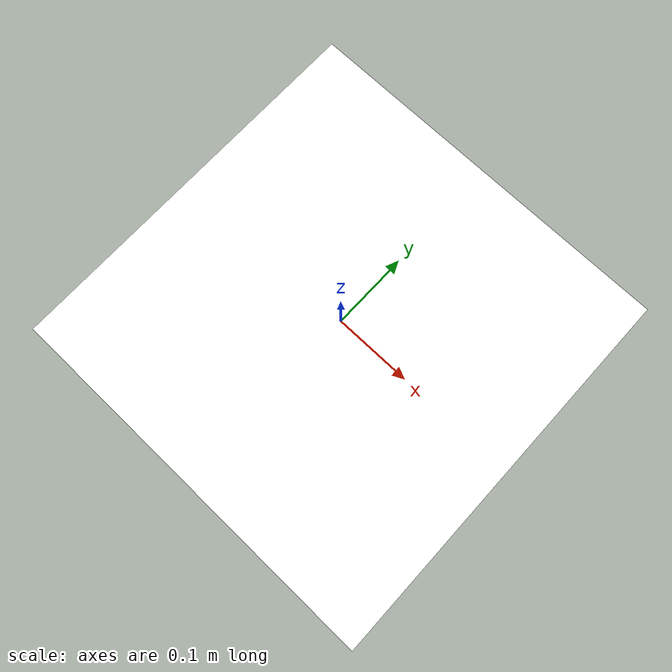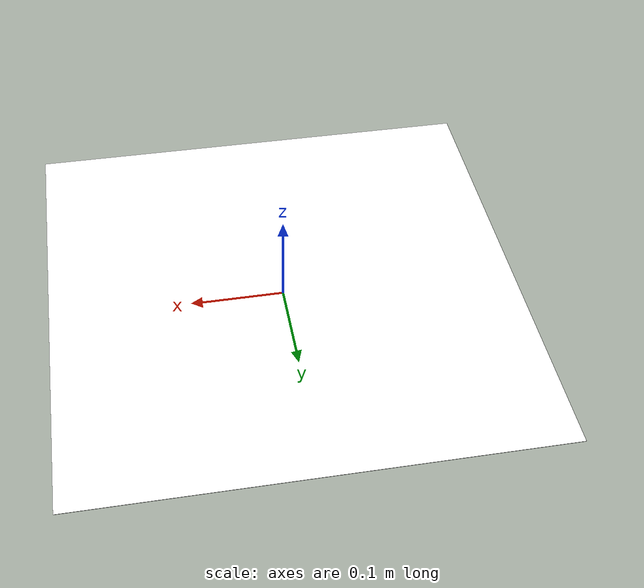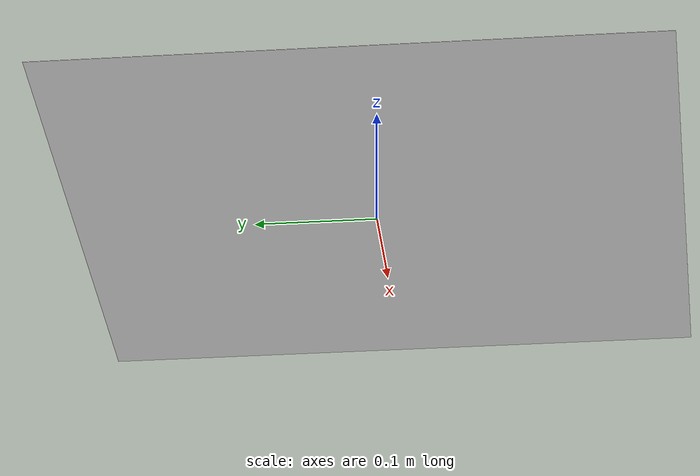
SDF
<?xml version="1.0" encoding="UTF-8"?>
<sdf version='1.9'>
  <model name='aruco_landing_pad'>
    <static>true</static>
    <link name="link">
      <collision name="collision">
        <geometry>
          <box>
            <size>0.5 0.5 0.02</size>
          </box>
        </geometry>
      </collision>
      <visual name="visual">
        <pose>0 0 0.011 0 0 0</pose>
        <geometry>
          <plane>
            <normal>0 0 1</normal>
            <size>0.5 0.5</size>
          </plane>
        </geometry>
        <material>
          <diffuse>1 1 1 1</diffuse>
          <specular>0 0 0 1</specular>
          <pbr>
            <metal>
              <albedo_map>model://aruco_landing_pad/aruco_marker_0.png</albedo_map>
              <roughness>1.0</roughness>
              <metalness>0.0</metalness>
            </metal>
          </pbr>
        </material>
      </visual>
    </link>
  </model>
</sdf>
